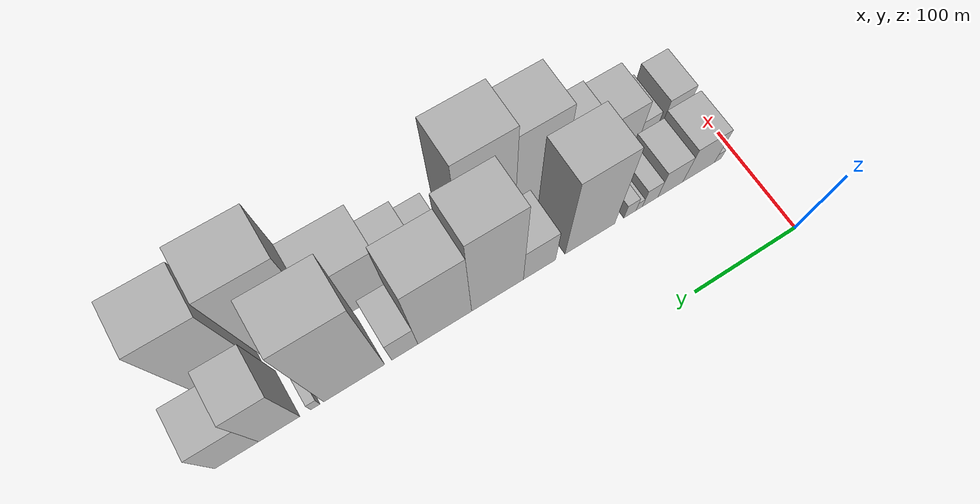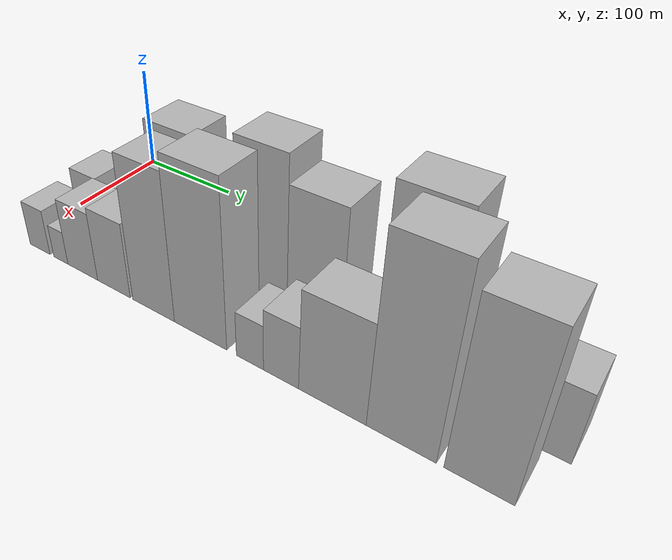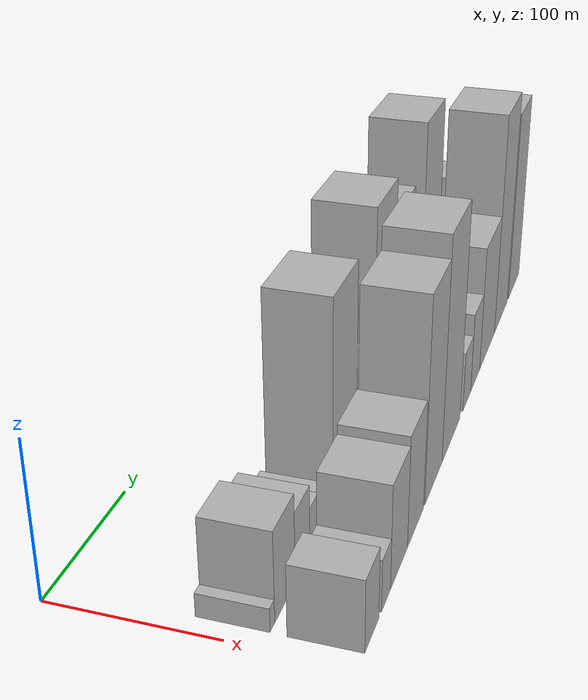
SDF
<sdf version="1.6">
 <world name="default">
  <model name="building_12">
   <static>1</static>
   <pose>100.0000 15.9284 0 0.000000 0.000000 0.000000</pose>
   <link name="link">
    <pose>0 0 7.50 0 0 0</pose>
    <collision name="collision"><geometry><box><size>40.0000 7.1708 15.0000</size></box></geometry></collision>
    <visual name="visual">
     <cast_shadows>0</cast_shadows>
     <geometry><box><size>40.0000 7.1708 15.0000</size></box></geometry>
     <material>
      <script>
       <uri>model://HANNAS_wall/materials/scripts</uri>
       <uri>model://HANNAS_wall/materials/textures</uri>
       <name>vrc/HANNAS_wall</name>
      </script>
     </material>
    </visual>
   </link>
  </model>
  <model name="building_13">
   <static>1</static>
   <pose>100.0000 35.5985 0 0.000000 0.000000 0.000000</pose>
   <link name="link">
    <pose>0 0 28.50 0 0 0</pose>
    <collision name="collision"><geometry><box><size>40.0000 32.1693 57.0000</size></box></geometry></collision>
    <visual name="visual">
     <cast_shadows>0</cast_shadows>
     <geometry><box><size>40.0000 32.1693 57.0000</size></box></geometry>
     <material>
      <script>
       <uri>model://HANNAS_wall/materials/scripts</uri>
       <uri>model://HANNAS_wall/materials/textures</uri>
       <name>vrc/HANNAS_wall</name>
      </script>
     </material>
    </visual>
   </link>
  </model>
  <model name="building_14">
   <static>1</static>
   <pose>100.0000 64.3368 0 0.000000 0.000000 0.000000</pose>
   <link name="link">
    <pose>0 0 22.50 0 0 0</pose>
    <collision name="collision"><geometry><box><size>40.0000 25.3074 45.0000</size></box></geometry></collision>
    <visual name="visual">
     <cast_shadows>0</cast_shadows>
     <geometry><box><size>40.0000 25.3074 45.0000</size></box></geometry>
     <material>
      <script>
       <uri>model://HANNAS_wall/materials/scripts</uri>
       <uri>model://HANNAS_wall/materials/textures</uri>
       <name>vrc/HANNAS_wall</name>
      </script>
     </material>
    </visual>
   </link>
  </model>
  <model name="building_15">
   <static>1</static>
   <pose>100.0000 84.6189 0 0.000000 0.000000 0.000000</pose>
   <link name="link">
    <pose>0 0 15.00 0 0 0</pose>
    <collision name="collision"><geometry><box><size>40.0000 15.2567 30.0000</size></box></geometry></collision>
    <visual name="visual">
     <cast_shadows>0</cast_shadows>
     <geometry><box><size>40.0000 15.2567 30.0000</size></box></geometry>
     <material>
      <script>
       <uri>model://HANNAS_wall/materials/scripts</uri>
       <uri>model://HANNAS_wall/materials/textures</uri>
       <name>vrc/HANNAS_wall</name>
      </script>
     </material>
    </visual>
   </link>
  </model>
  <model name="building_16">
   <static>1</static>
   <pose>100.0000 95.3772 0 0.000000 0.000000 0.000000</pose>
   <link name="link">
    <pose>0 0 7.50 0 0 0</pose>
    <collision name="collision"><geometry><box><size>40.0000 6.2601 15.0000</size></box></geometry></collision>
    <visual name="visual">
     <cast_shadows>0</cast_shadows>
     <geometry><box><size>40.0000 6.2601 15.0000</size></box></geometry>
     <material>
      <script>
       <uri>model://HANNAS_wall/materials/scripts</uri>
       <uri>model://HANNAS_wall/materials/textures</uri>
       <name>vrc/HANNAS_wall</name>
      </script>
     </material>
    </visual>
   </link>
  </model>
  <model name="building_17">
   <static>1</static>
   <pose>100.0000 104.4697 0 0.000000 0.000000 0.000000</pose>
   <link name="link">
    <pose>0 0 12.00 0 0 0</pose>
    <collision name="collision"><geometry><box><size>40.0000 11.9249 24.0000</size></box></geometry></collision>
    <visual name="visual">
     <cast_shadows>0</cast_shadows>
     <geometry><box><size>40.0000 11.9249 24.0000</size></box></geometry>
     <material>
      <script>
       <uri>model://HANNAS_wall/materials/scripts</uri>
       <uri>model://HANNAS_wall/materials/textures</uri>
       <name>vrc/HANNAS_wall</name>
      </script>
     </material>
    </visual>
   </link>
  </model>
  <model name="building_18">
   <static>1</static>
   <pose>100.0000 143.3499 0 0.000000 0.000000 0.000000</pose>
   <link name="link">
    <pose>0 0 67.50 0 0 0</pose>
    <collision name="collision"><geometry><box><size>40.0000 47.8355 135.0000</size></box></geometry></collision>
    <visual name="visual">
     <cast_shadows>0</cast_shadows>
     <geometry><box><size>40.0000 47.8355 135.0000</size></box></geometry>
     <material>
      <script>
       <uri>model://HANNAS_wall/materials/scripts</uri>
       <uri>model://HANNAS_wall/materials/textures</uri>
       <name>vrc/HANNAS_wall</name>
      </script>
     </material>
    </visual>
   </link>
  </model>
  <model name="building_19">
   <static>1</static>
   <pose>100.0000 191.3080 0 0.000000 0.000000 0.000000</pose>
   <link name="link">
    <pose>0 0 30.00 0 0 0</pose>
    <collision name="collision"><geometry><box><size>40.0000 30.0808 60.0000</size></box></geometry></collision>
    <visual name="visual">
     <cast_shadows>0</cast_shadows>
     <geometry><box><size>40.0000 30.0808 60.0000</size></box></geometry>
     <material>
      <script>
       <uri>model://HANNAS_wall/materials/scripts</uri>
       <uri>model://HANNAS_wall/materials/textures</uri>
       <name>vrc/HANNAS_wall</name>
      </script>
     </material>
    </visual>
   </link>
  </model>
  <model name="building_20">
   <static>1</static>
   <pose>100.0000 229.9911 0 0.000000 0.000000 0.000000</pose>
   <link name="link">
    <pose>0 0 75.00 0 0 0</pose>
    <collision name="collision"><geometry><box><size>40.0000 47.2853 150.0000</size></box></geometry></collision>
    <visual name="visual">
     <cast_shadows>0</cast_shadows>
     <geometry><box><size>40.0000 47.2853 150.0000</size></box></geometry>
     <material>
      <script>
       <uri>model://HANNAS_wall/materials/scripts</uri>
       <uri>model://HANNAS_wall/materials/textures</uri>
       <name>vrc/HANNAS_wall</name>
      </script>
     </material>
    </visual>
   </link>
  </model>
  <model name="building_21">
   <static>1</static>
   <pose>100.0000 277.5920 0 0.000000 0.000000 0.000000</pose>
   <link name="link">
    <pose>0 0 63.00 0 0 0</pose>
    <collision name="collision"><geometry><box><size>40.0000 47.9166 126.0000</size></box></geometry></collision>
    <visual name="visual">
     <cast_shadows>0</cast_shadows>
     <geometry><box><size>40.0000 47.9166 126.0000</size></box></geometry>
     <material>
      <script>
       <uri>model://HANNAS_wall/materials/scripts</uri>
       <uri>model://HANNAS_wall/materials/textures</uri>
       <name>vrc/HANNAS_wall</name>
      </script>
     </material>
    </visual>
   </link>
  </model>
  <model name="building_22">
   <static>1</static>
   <pose>100.0000 312.9710 0 0.000000 0.000000 0.000000</pose>
   <link name="link">
    <pose>0 0 22.50 0 0 0</pose>
    <collision name="collision"><geometry><box><size>40.0000 22.8412 45.0000</size></box></geometry></collision>
    <visual name="visual">
     <cast_shadows>0</cast_shadows>
     <geometry><box><size>40.0000 22.8412 45.0000</size></box></geometry>
     <material>
      <script>
       <uri>model://HANNAS_wall/materials/scripts</uri>
       <uri>model://HANNAS_wall/materials/textures</uri>
       <name>vrc/HANNAS_wall</name>
      </script>
     </material>
    </visual>
   </link>
  </model>
  <model name="building_23">
   <static>1</static>
   <pose>100.0000 356.3188 0 0.000000 0.000000 0.000000</pose>
   <link name="link">
    <pose>0 0 79.50 0 0 0</pose>
    <collision name="collision"><geometry><box><size>40.0000 51.8543 159.0000</size></box></geometry></collision>
    <visual name="visual">
     <cast_shadows>0</cast_shadows>
     <geometry><box><size>40.0000 51.8543 159.0000</size></box></geometry>
     <material>
      <script>
       <uri>model://HANNAS_wall/materials/scripts</uri>
       <uri>model://HANNAS_wall/materials/textures</uri>
       <name>vrc/HANNAS_wall</name>
      </script>
     </material>
    </visual>
   </link>
  </model>
  <model name="building_24">
   <static>1</static>
   <pose>100.0000 389.1446 0 0.000000 0.000000 0.000000</pose>
   <link name="link">
    <pose>0 0 9.00 0 0 0</pose>
    <collision name="collision"><geometry><box><size>40.0000 7.7974 18.0000</size></box></geometry></collision>
    <visual name="visual">
     <cast_shadows>0</cast_shadows>
     <geometry><box><size>40.0000 7.7974 18.0000</size></box></geometry>
     <material>
      <script>
       <uri>model://HANNAS_wall/materials/scripts</uri>
       <uri>model://HANNAS_wall/materials/textures</uri>
       <name>vrc/HANNAS_wall</name>
      </script>
     </material>
    </visual>
   </link>
  </model>
  <model name="building_25">
   <static>1</static>
   <pose>100.0000 418.8603 0 0.000000 0.000000 0.000000</pose>
   <link name="link">
    <pose>0 0 46.50 0 0 0</pose>
    <collision name="collision"><geometry><box><size>40.0000 33.6339 93.0000</size></box></geometry></collision>
    <visual name="visual">
     <cast_shadows>0</cast_shadows>
     <geometry><box><size>40.0000 33.6339 93.0000</size></box></geometry>
     <material>
      <script>
       <uri>model://HANNAS_wall/materials/scripts</uri>
       <uri>model://HANNAS_wall/materials/textures</uri>
       <name>vrc/HANNAS_wall</name>
      </script>
     </material>
    </visual>
   </link>
  </model>
  <model name="building_26">
   <static>1</static>
   <pose>100.0000 453.3038 0 0.000000 0.000000 0.000000</pose>
   <link name="link">
    <pose>0 0 31.50 0 0 0</pose>
    <collision name="collision"><geometry><box><size>40.0000 35.2532 63.0000</size></box></geometry></collision>
    <visual name="visual">
     <cast_shadows>0</cast_shadows>
     <geometry><box><size>40.0000 35.2532 63.0000</size></box></geometry>
     <material>
      <script>
       <uri>model://HANNAS_wall/materials/scripts</uri>
       <uri>model://HANNAS_wall/materials/textures</uri>
       <name>vrc/HANNAS_wall</name>
      </script>
     </material>
    </visual>
   </link>
  </model>
  <model name="building_40">
   <static>1</static>
   <pose>149.0000 25.0280 0 0.000000 0.000000 0.000000</pose>
   <link name="link">
    <pose>0 0 22.50 0 0 0</pose>
    <collision name="collision"><geometry><box><size>40.0000 26.1854 45.0000</size></box></geometry></collision>
    <visual name="visual">
     <cast_shadows>0</cast_shadows>
     <geometry><box><size>40.0000 26.1854 45.0000</size></box></geometry>
     <material>
      <script>
       <uri>model://HANNAS_wall/materials/scripts</uri>
       <uri>model://HANNAS_wall/materials/textures</uri>
       <name>vrc/HANNAS_wall</name>
      </script>
     </material>
    </visual>
   </link>
  </model>
  <model name="building_41">
   <static>1</static>
   <pose>149.0000 52.1017 0 0.000000 0.000000 0.000000</pose>
   <link name="link">
    <pose>0 0 16.50 0 0 0</pose>
    <collision name="collision"><geometry><box><size>40.0000 17.9620 33.0000</size></box></geometry></collision>
    <visual name="visual">
     <cast_shadows>0</cast_shadows>
     <geometry><box><size>40.0000 17.9620 33.0000</size></box></geometry>
     <material>
      <script>
       <uri>model://HANNAS_wall/materials/scripts</uri>
       <uri>model://HANNAS_wall/materials/textures</uri>
       <name>vrc/HANNAS_wall</name>
      </script>
     </material>
    </visual>
   </link>
  </model>
  <model name="building_42">
   <static>1</static>
   <pose>149.0000 79.2631 0 0.000000 0.000000 0.000000</pose>
   <link name="link">
    <pose>0 0 33.00 0 0 0</pose>
    <collision name="collision"><geometry><box><size>40.0000 36.3609 66.0000</size></box></geometry></collision>
    <visual name="visual">
     <cast_shadows>0</cast_shadows>
     <geometry><box><size>40.0000 36.3609 66.0000</size></box></geometry>
     <material>
      <script>
       <uri>model://HANNAS_wall/materials/scripts</uri>
       <uri>model://HANNAS_wall/materials/textures</uri>
       <name>vrc/HANNAS_wall</name>
      </script>
     </material>
    </visual>
   </link>
  </model>
  <model name="building_43">
   <static>1</static>
   <pose>149.0000 116.1376 0 0.000000 0.000000 0.000000</pose>
   <link name="link">
    <pose>0 0 36.00 0 0 0</pose>
    <collision name="collision"><geometry><box><size>40.0000 37.3880 72.0000</size></box></geometry></collision>
    <visual name="visual">
     <cast_shadows>0</cast_shadows>
     <geometry><box><size>40.0000 37.3880 72.0000</size></box></geometry>
     <material>
      <script>
       <uri>model://HANNAS_wall/materials/scripts</uri>
       <uri>model://HANNAS_wall/materials/textures</uri>
       <name>vrc/HANNAS_wall</name>
      </script>
     </material>
    </visual>
   </link>
  </model>
  <model name="building_44">
   <static>1</static>
   <pose>149.0000 160.1861 0 0.000000 0.000000 0.000000</pose>
   <link name="link">
    <pose>0 0 67.50 0 0 0</pose>
    <collision name="collision"><geometry><box><size>40.0000 44.7092 135.0000</size></box></geometry></collision>
    <visual name="visual">
     <cast_shadows>0</cast_shadows>
     <geometry><box><size>40.0000 44.7092 135.0000</size></box></geometry>
     <material>
      <script>
       <uri>model://HANNAS_wall/materials/scripts</uri>
       <uri>model://HANNAS_wall/materials/textures</uri>
       <name>vrc/HANNAS_wall</name>
      </script>
     </material>
    </visual>
   </link>
  </model>
  <model name="building_45">
   <static>1</static>
   <pose>149.0000 208.3413 0 0.000000 0.000000 0.000000</pose>
   <link name="link">
    <pose>0 0 75.00 0 0 0</pose>
    <collision name="collision"><geometry><box><size>40.0000 51.6011 150.0000</size></box></geometry></collision>
    <visual name="visual">
     <cast_shadows>0</cast_shadows>
     <geometry><box><size>40.0000 51.6011 150.0000</size></box></geometry>
     <material>
      <script>
       <uri>model://HANNAS_wall/materials/scripts</uri>
       <uri>model://HANNAS_wall/materials/textures</uri>
       <name>vrc/HANNAS_wall</name>
      </script>
     </material>
    </visual>
   </link>
  </model>
  <model name="building_46">
   <static>1</static>
   <pose>149.0000 255.4293 0 0.000000 0.000000 0.000000</pose>
   <link name="link">
    <pose>0 0 21.00 0 0 0</pose>
    <collision name="collision"><geometry><box><size>40.0000 24.5750 42.0000</size></box></geometry></collision>
    <visual name="visual">
     <cast_shadows>0</cast_shadows>
     <geometry><box><size>40.0000 24.5750 42.0000</size></box></geometry>
     <material>
      <script>
       <uri>model://HANNAS_wall/materials/scripts</uri>
       <uri>model://HANNAS_wall/materials/textures</uri>
       <name>vrc/HANNAS_wall</name>
      </script>
     </material>
    </visual>
   </link>
  </model>
  <model name="building_47">
   <static>1</static>
   <pose>149.0000 282.8569 0 0.000000 0.000000 0.000000</pose>
   <link name="link">
    <pose>0 0 28.50 0 0 0</pose>
    <collision name="collision"><geometry><box><size>40.0000 30.2802 57.0000</size></box></geometry></collision>
    <visual name="visual">
     <cast_shadows>0</cast_shadows>
     <geometry><box><size>40.0000 30.2802 57.0000</size></box></geometry>
     <material>
      <script>
       <uri>model://HANNAS_wall/materials/scripts</uri>
       <uri>model://HANNAS_wall/materials/textures</uri>
       <name>vrc/HANNAS_wall</name>
      </script>
     </material>
    </visual>
   </link>
  </model>
  <model name="building_48">
   <static>1</static>
   <pose>149.0000 324.9307 0 0.000000 0.000000 0.000000</pose>
   <link name="link">
    <pose>0 0 45.00 0 0 0</pose>
    <collision name="collision"><geometry><box><size>40.0000 53.8675 90.0000</size></box></geometry></collision>
    <visual name="visual">
     <cast_shadows>0</cast_shadows>
     <geometry><box><size>40.0000 53.8675 90.0000</size></box></geometry>
     <material>
      <script>
       <uri>model://HANNAS_wall/materials/scripts</uri>
       <uri>model://HANNAS_wall/materials/textures</uri>
       <name>vrc/HANNAS_wall</name>
      </script>
     </material>
    </visual>
   </link>
  </model>
  <model name="building_49">
   <static>1</static>
   <pose>149.0000 377.1143 0 0.000000 0.000000 0.000000</pose>
   <link name="link">
    <pose>0 0 81.00 0 0 0</pose>
    <collision name="collision"><geometry><box><size>40.0000 50.4996 162.0000</size></box></geometry></collision>
    <visual name="visual">
     <cast_shadows>0</cast_shadows>
     <geometry><box><size>40.0000 50.4996 162.0000</size></box></geometry>
     <material>
      <script>
       <uri>model://HANNAS_wall/materials/scripts</uri>
       <uri>model://HANNAS_wall/materials/textures</uri>
       <name>vrc/HANNAS_wall</name>
      </script>
     </material>
    </visual>
   </link>
  </model>
  <model name="building_50">
   <static>1</static>
   <pose>149.0000 430.3167 0 0.000000 0.000000 0.000000</pose>
   <link name="link">
    <pose>0 0 72.00 0 0 0</pose>
    <collision name="collision"><geometry><box><size>40.0000 45.9052 144.0000</size></box></geometry></collision>
    <visual name="visual">
     <cast_shadows>0</cast_shadows>
     <geometry><box><size>40.0000 45.9052 144.0000</size></box></geometry>
     <material>
      <script>
       <uri>model://HANNAS_wall/materials/scripts</uri>
       <uri>model://HANNAS_wall/materials/textures</uri>
       <name>vrc/HANNAS_wall</name>
      </script>
     </material>
    </visual>
   </link>
  </model>
 </world>
</sdf>
